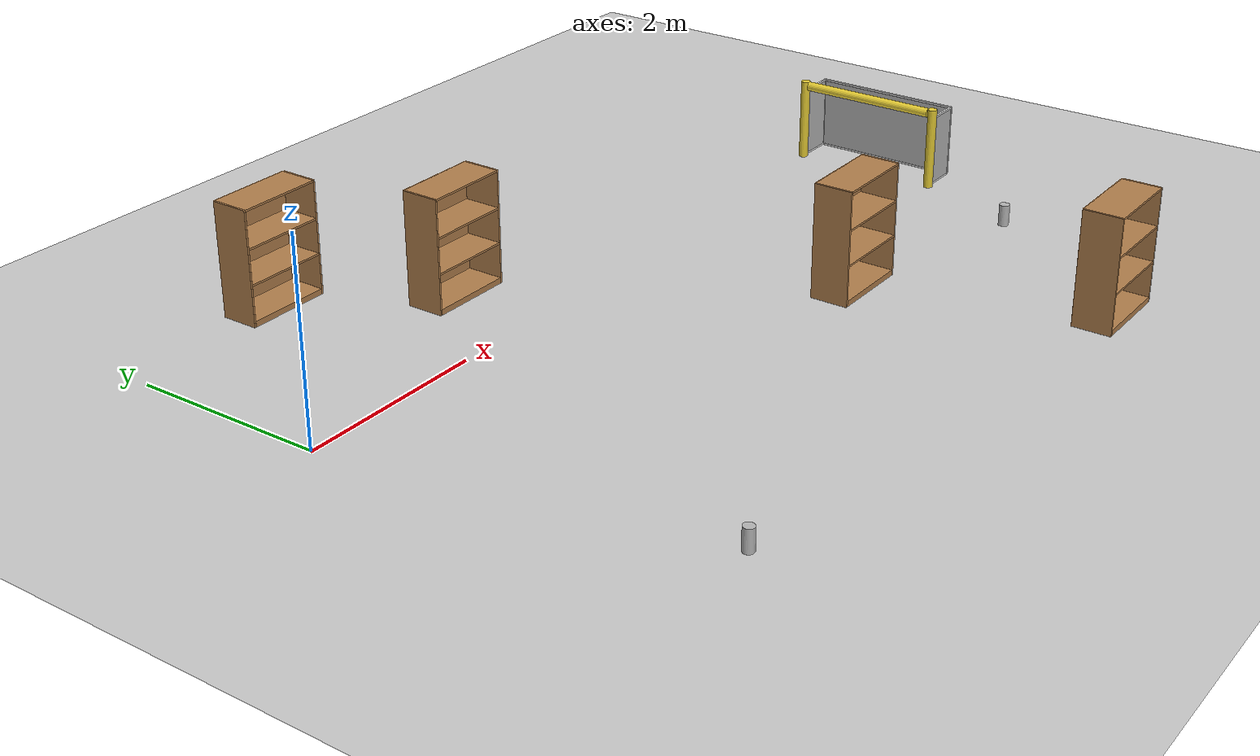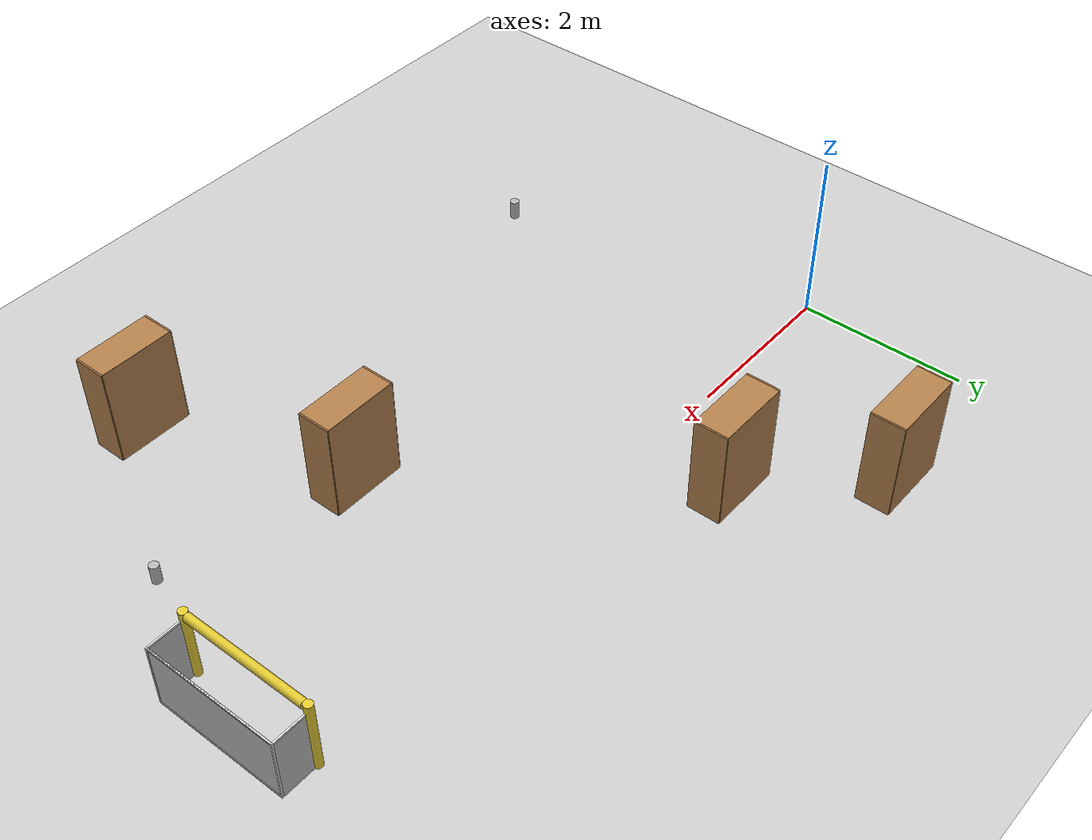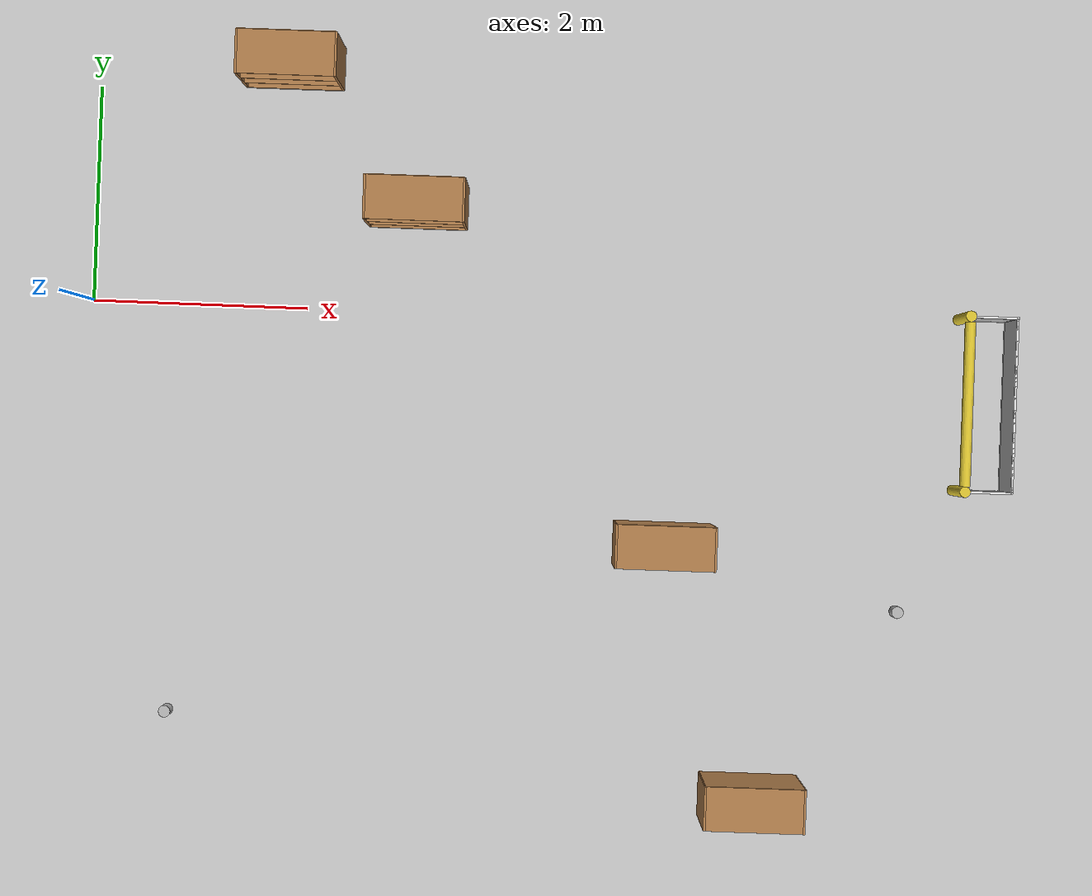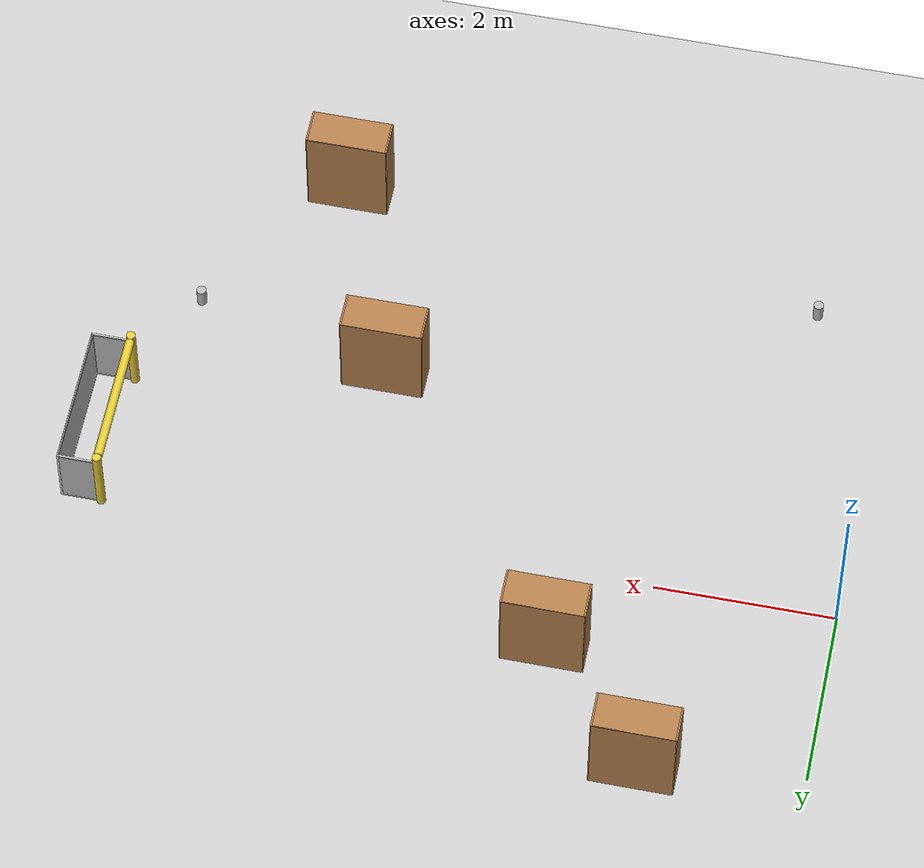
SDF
<sdf version="1.7">
 <world name="default">
  <light name="sun" type="directional">
   <pose>0 0 10 0 -0 0</pose>
   <diffuse>0.8 0.8 0.8 1</diffuse>
   <specular>0.2 0.2 0.2 1</specular>
   <attenuation>
    <range>1000</range>
    <constant>0.9</constant>
    <linear>0.01</linear>
    <quadratic>0.001</quadratic>
   </attenuation>
   <direction>-0.5 0.1 -0.9</direction>
   <spot><inner_angle>0</inner_angle><outer_angle>0</outer_angle><falloff>0</falloff></spot>
  </light>
  <model name="ground_plane">
   <static>1</static>
   <link name="link">
    <collision name="collision">
     <geometry><plane><normal>0 0 1</normal><size>100 100</size></plane></geometry>
     <surface>
      <contact><collide_bitmask>65535</collide_bitmask></contact>
      <friction><ode><mu>100</mu><mu2>50</mu2></ode></friction>
     </surface>
    </collision>
    <visual name="visual">
     <cast_shadows>0</cast_shadows>
     <geometry><plane><normal>0 0 1</normal><size>100 100</size></plane></geometry>
     <material>
      <script><uri>file://media/materials/scripts/gazebo.material</uri><name>Gazebo/Grey</name></script>
     </material>
    </visual>
   </link>
  </model>
  <gravity>0 0 -9.8</gravity>
  <magnetic_field>6e-06 2.3e-05 -4.2e-05</magnetic_field>
  <atmosphere type="adiabatic"/>
  <physics type="ode">
   <max_step_size>0.001</max_step_size>
   <real_time_factor>1</real_time_factor>
   <real_time_update_rate>1000</real_time_update_rate>
  </physics>
  <scene><ambient>0.4 0.4 0.4 1</ambient><background>0.7 0.7 0.7 1</background><shadows>1</shadows></scene>
  <audio><device>default</device></audio>
  <spherical_coordinates>
   <surface_model>EARTH_WGS84</surface_model>
   <latitude_deg>0</latitude_deg>
   <longitude_deg>0</longitude_deg>
   <elevation>0</elevation>
   <heading_deg>0</heading_deg>
  </spherical_coordinates>
  <model name="bookshelf">
   <static>1</static>
   <link name="link">
    <inertial><mass>1</mass></inertial>
    <collision name="back">
     <pose>0 0.005 0.6 0 -0 0</pose>
     <geometry><box><size>0.9 0.01 1.2</size></box></geometry>
    </collision>
    <visual name="visual1">
     <pose>0 0.005 0.6 0 -0 0</pose>
     <geometry><box><size>0.9 0.01 1.2</size></box></geometry>
     <material>
      <script><uri>file://media/materials/scripts/gazebo.material</uri><name>Gazebo/Wood</name></script>
     </material>
    </visual>
    <collision name="left_side">
     <pose>0.45 -0.195 0.6 0 -0 0</pose>
     <geometry><box><size>0.02 0.4 1.2</size></box></geometry>
    </collision>
    <visual name="visual2">
     <pose>0.45 -0.195 0.6 0 -0 0</pose>
     <geometry><box><size>0.02 0.4 1.2</size></box></geometry>
     <material>
      <script><uri>file://media/materials/scripts/gazebo.material</uri><name>Gazebo/Wood</name></script>
     </material>
    </visual>
    <collision name="right_side">
     <pose>-0.45 -0.195 0.6 0 -0 0</pose>
     <geometry><box><size>0.02 0.4 1.2</size></box></geometry>
    </collision>
    <visual name="visual3">
     <pose>-0.45 -0.195 0.6 0 -0 0</pose>
     <geometry><box><size>0.02 0.4 1.2</size></box></geometry>
     <material>
      <script><uri>file://media/materials/scripts/gazebo.material</uri><name>Gazebo/Wood</name></script>
     </material>
    </visual>
    <collision name="bottom">
     <pose>0 -0.195 0.03 0 -0 0</pose>
     <geometry><box><size>0.88 0.4 0.06</size></box></geometry>
    </collision>
    <visual name="visual4">
     <pose>0 -0.195 0.03 0 -0 0</pose>
     <geometry><box><size>0.88 0.4 0.06</size></box></geometry>
     <material>
      <script><uri>file://media/materials/scripts/gazebo.material</uri><name>Gazebo/Wood</name></script>
     </material>
    </visual>
    <collision name="top">
     <pose>0 -0.195 1.19 0 -0 0</pose>
     <geometry><box><size>0.88 0.4 0.02</size></box></geometry>
    </collision>
    <visual name="visual5">
     <pose>0 -0.195 1.19 0 -0 0</pose>
     <geometry><box><size>0.88 0.4 0.02</size></box></geometry>
     <material>
      <script><uri>file://media/materials/scripts/gazebo.material</uri><name>Gazebo/Wood</name></script>
     </material>
    </visual>
    <collision name="low_shelf">
     <pose>0 -0.195 0.43 0 -0 0</pose>
     <geometry><box><size>0.88 0.4 0.02</size></box></geometry>
    </collision>
    <visual name="visual6">
     <pose>0 -0.195 0.43 0 -0 0</pose>
     <geometry><box><size>0.88 0.4 0.02</size></box></geometry>
     <material>
      <script><uri>file://media/materials/scripts/gazebo.material</uri><name>Gazebo/Wood</name></script>
     </material>
    </visual>
    <collision name="high_shelf">
     <pose>0 -0.195 0.8 0 -0 0</pose>
     <geometry><box><size>0.88 0.4 0.02</size></box></geometry>
    </collision>
    <visual name="visual7">
     <pose>0 -0.195 0.8 0 -0 0</pose>
     <geometry><box><size>0.88 0.4 0.02</size></box></geometry>
     <material>
      <script><uri>file://media/materials/scripts/gazebo.material</uri><name>Gazebo/Wood</name></script>
     </material>
    </visual>
   </link>
   <pose>1.81448 2.44251 0 0 -0 0</pose>
  </model>
  <model name="bookshelf_0">
   <static>1</static>
   <link name="link">
    <inertial><mass>1</mass></inertial>
    <collision name="back">
     <pose>0 0.005 0.6 0 -0 0</pose>
     <geometry><box><size>0.9 0.01 1.2</size></box></geometry>
    </collision>
    <visual name="visual1">
     <pose>0 0.005 0.6 0 -0 0</pose>
     <geometry><box><size>0.9 0.01 1.2</size></box></geometry>
     <material>
      <script><uri>file://media/materials/scripts/gazebo.material</uri><name>Gazebo/Wood</name></script>
     </material>
    </visual>
    <collision name="left_side">
     <pose>0.45 -0.195 0.6 0 -0 0</pose>
     <geometry><box><size>0.02 0.4 1.2</size></box></geometry>
    </collision>
    <visual name="visual2">
     <pose>0.45 -0.195 0.6 0 -0 0</pose>
     <geometry><box><size>0.02 0.4 1.2</size></box></geometry>
     <material>
      <script><uri>file://media/materials/scripts/gazebo.material</uri><name>Gazebo/Wood</name></script>
     </material>
    </visual>
    <collision name="right_side">
     <pose>-0.45 -0.195 0.6 0 -0 0</pose>
     <geometry><box><size>0.02 0.4 1.2</size></box></geometry>
    </collision>
    <visual name="visual3">
     <pose>-0.45 -0.195 0.6 0 -0 0</pose>
     <geometry><box><size>0.02 0.4 1.2</size></box></geometry>
     <material>
      <script><uri>file://media/materials/scripts/gazebo.material</uri><name>Gazebo/Wood</name></script>
     </material>
    </visual>
    <collision name="bottom">
     <pose>0 -0.195 0.03 0 -0 0</pose>
     <geometry><box><size>0.88 0.4 0.06</size></box></geometry>
    </collision>
    <visual name="visual4">
     <pose>0 -0.195 0.03 0 -0 0</pose>
     <geometry><box><size>0.88 0.4 0.06</size></box></geometry>
     <material>
      <script><uri>file://media/materials/scripts/gazebo.material</uri><name>Gazebo/Wood</name></script>
     </material>
    </visual>
    <collision name="top">
     <pose>0 -0.195 1.19 0 -0 0</pose>
     <geometry><box><size>0.88 0.4 0.02</size></box></geometry>
    </collision>
    <visual name="visual5">
     <pose>0 -0.195 1.19 0 -0 0</pose>
     <geometry><box><size>0.88 0.4 0.02</size></box></geometry>
     <material>
      <script><uri>file://media/materials/scripts/gazebo.material</uri><name>Gazebo/Wood</name></script>
     </material>
    </visual>
    <collision name="low_shelf">
     <pose>0 -0.195 0.43 0 -0 0</pose>
     <geometry><box><size>0.88 0.4 0.02</size></box></geometry>
    </collision>
    <visual name="visual6">
     <pose>0 -0.195 0.43 0 -0 0</pose>
     <geometry><box><size>0.88 0.4 0.02</size></box></geometry>
     <material>
      <script><uri>file://media/materials/scripts/gazebo.material</uri><name>Gazebo/Wood</name></script>
     </material>
    </visual>
    <collision name="high_shelf">
     <pose>0 -0.195 0.8 0 -0 0</pose>
     <geometry><box><size>0.88 0.4 0.02</size></box></geometry>
    </collision>
    <visual name="visual7">
     <pose>0 -0.195 0.8 0 -0 0</pose>
     <geometry><box><size>0.88 0.4 0.02</size></box></geometry>
     <material>
      <script><uri>file://media/materials/scripts/gazebo.material</uri><name>Gazebo/Wood</name></script>
     </material>
    </visual>
   </link>
   <pose>5.39808 -1.89231 0 0 -0 0</pose>
  </model>
  <model name="bookshelf_1">
   <static>1</static>
   <link name="link">
    <inertial><mass>1</mass></inertial>
    <collision name="back">
     <pose>0 0.005 0.6 0 -0 0</pose>
     <geometry><box><size>0.9 0.01 1.2</size></box></geometry>
    </collision>
    <visual name="visual1">
     <pose>0 0.005 0.6 0 -0 0</pose>
     <geometry><box><size>0.9 0.01 1.2</size></box></geometry>
     <material>
      <script><uri>file://media/materials/scripts/gazebo.material</uri><name>Gazebo/Wood</name></script>
     </material>
    </visual>
    <collision name="left_side">
     <pose>0.45 -0.195 0.6 0 -0 0</pose>
     <geometry><box><size>0.02 0.4 1.2</size></box></geometry>
    </collision>
    <visual name="visual2">
     <pose>0.45 -0.195 0.6 0 -0 0</pose>
     <geometry><box><size>0.02 0.4 1.2</size></box></geometry>
     <material>
      <script><uri>file://media/materials/scripts/gazebo.material</uri><name>Gazebo/Wood</name></script>
     </material>
    </visual>
    <collision name="right_side">
     <pose>-0.45 -0.195 0.6 0 -0 0</pose>
     <geometry><box><size>0.02 0.4 1.2</size></box></geometry>
    </collision>
    <visual name="visual3">
     <pose>-0.45 -0.195 0.6 0 -0 0</pose>
     <geometry><box><size>0.02 0.4 1.2</size></box></geometry>
     <material>
      <script><uri>file://media/materials/scripts/gazebo.material</uri><name>Gazebo/Wood</name></script>
     </material>
    </visual>
    <collision name="bottom">
     <pose>0 -0.195 0.03 0 -0 0</pose>
     <geometry><box><size>0.88 0.4 0.06</size></box></geometry>
    </collision>
    <visual name="visual4">
     <pose>0 -0.195 0.03 0 -0 0</pose>
     <geometry><box><size>0.88 0.4 0.06</size></box></geometry>
     <material>
      <script><uri>file://media/materials/scripts/gazebo.material</uri><name>Gazebo/Wood</name></script>
     </material>
    </visual>
    <collision name="top">
     <pose>0 -0.195 1.19 0 -0 0</pose>
     <geometry><box><size>0.88 0.4 0.02</size></box></geometry>
    </collision>
    <visual name="visual5">
     <pose>0 -0.195 1.19 0 -0 0</pose>
     <geometry><box><size>0.88 0.4 0.02</size></box></geometry>
     <material>
      <script><uri>file://media/materials/scripts/gazebo.material</uri><name>Gazebo/Wood</name></script>
     </material>
    </visual>
    <collision name="low_shelf">
     <pose>0 -0.195 0.43 0 -0 0</pose>
     <geometry><box><size>0.88 0.4 0.02</size></box></geometry>
    </collision>
    <visual name="visual6">
     <pose>0 -0.195 0.43 0 -0 0</pose>
     <geometry><box><size>0.88 0.4 0.02</size></box></geometry>
     <material>
      <script><uri>file://media/materials/scripts/gazebo.material</uri><name>Gazebo/Wood</name></script>
     </material>
    </visual>
    <collision name="high_shelf">
     <pose>0 -0.195 0.8 0 -0 0</pose>
     <geometry><box><size>0.88 0.4 0.02</size></box></geometry>
    </collision>
    <visual name="visual7">
     <pose>0 -0.195 0.8 0 -0 0</pose>
     <geometry><box><size>0.88 0.4 0.02</size></box></geometry>
     <material>
      <script><uri>file://media/materials/scripts/gazebo.material</uri><name>Gazebo/Wood</name></script>
     </material>
    </visual>
   </link>
   <pose>3.01571 1.17546 0 0 -0 0</pose>
  </model>
  <model name="beer">
   <link name="link">
    <pose>0 0 0.115 0 -0 0</pose>
    <inertial>
     <mass>0.39</mass>
     <inertia><ixx>0.00058</ixx><ixy>0</ixy><ixz>0</ixz><iyy>0.00058</iyy><iyz>0</iyz><izz>0.00019</izz></inertia>
    </inertial>
    <collision name="collision">
     <geometry><cylinder><radius>0.055</radius><length>0.23</length></cylinder></geometry>
    </collision>
    <visual name="visual">
     <geometry><cylinder><radius>0.055</radius><length>0.23</length></cylinder></geometry>
     <material>
      <script>
       <uri>model://beer/materials/scripts</uri>
       <uri>model://beer/materials/textures</uri>
       <name>Beer/Diffuse</name>
      </script>
     </material>
    </visual>
   </link>
   <pose>0.817061 -3.80803 0.009992 -0 -0 -8e-06</pose>
  </model>
  <model name="bookshelf_2">
   <static>1</static>
   <link name="link">
    <inertial><mass>1</mass></inertial>
    <collision name="back">
     <pose>0 0.005 0.6 0 -0 0</pose>
     <geometry><box><size>0.9 0.01 1.2</size></box></geometry>
    </collision>
    <visual name="visual1">
     <pose>0 0.005 0.6 0 -0 0</pose>
     <geometry><box><size>0.9 0.01 1.2</size></box></geometry>
     <material>
      <script><uri>file://media/materials/scripts/gazebo.material</uri><name>Gazebo/Wood</name></script>
     </material>
    </visual>
    <collision name="left_side">
     <pose>0.45 -0.195 0.6 0 -0 0</pose>
     <geometry><box><size>0.02 0.4 1.2</size></box></geometry>
    </collision>
    <visual name="visual2">
     <pose>0.45 -0.195 0.6 0 -0 0</pose>
     <geometry><box><size>0.02 0.4 1.2</size></box></geometry>
     <material>
      <script><uri>file://media/materials/scripts/gazebo.material</uri><name>Gazebo/Wood</name></script>
     </material>
    </visual>
    <collision name="right_side">
     <pose>-0.45 -0.195 0.6 0 -0 0</pose>
     <geometry><box><size>0.02 0.4 1.2</size></box></geometry>
    </collision>
    <visual name="visual3">
     <pose>-0.45 -0.195 0.6 0 -0 0</pose>
     <geometry><box><size>0.02 0.4 1.2</size></box></geometry>
     <material>
      <script><uri>file://media/materials/scripts/gazebo.material</uri><name>Gazebo/Wood</name></script>
     </material>
    </visual>
    <collision name="bottom">
     <pose>0 -0.195 0.03 0 -0 0</pose>
     <geometry><box><size>0.88 0.4 0.06</size></box></geometry>
    </collision>
    <visual name="visual4">
     <pose>0 -0.195 0.03 0 -0 0</pose>
     <geometry><box><size>0.88 0.4 0.06</size></box></geometry>
     <material>
      <script><uri>file://media/materials/scripts/gazebo.material</uri><name>Gazebo/Wood</name></script>
     </material>
    </visual>
    <collision name="top">
     <pose>0 -0.195 1.19 0 -0 0</pose>
     <geometry><box><size>0.88 0.4 0.02</size></box></geometry>
    </collision>
    <visual name="visual5">
     <pose>0 -0.195 1.19 0 -0 0</pose>
     <geometry><box><size>0.88 0.4 0.02</size></box></geometry>
     <material>
      <script><uri>file://media/materials/scripts/gazebo.material</uri><name>Gazebo/Wood</name></script>
     </material>
    </visual>
    <collision name="low_shelf">
     <pose>0 -0.195 0.43 0 -0 0</pose>
     <geometry><box><size>0.88 0.4 0.02</size></box></geometry>
    </collision>
    <visual name="visual6">
     <pose>0 -0.195 0.43 0 -0 0</pose>
     <geometry><box><size>0.88 0.4 0.02</size></box></geometry>
     <material>
      <script><uri>file://media/materials/scripts/gazebo.material</uri><name>Gazebo/Wood</name></script>
     </material>
    </visual>
    <collision name="high_shelf">
     <pose>0 -0.195 0.8 0 -0 0</pose>
     <geometry><box><size>0.88 0.4 0.02</size></box></geometry>
    </collision>
    <visual name="visual7">
     <pose>0 -0.195 0.8 0 -0 0</pose>
     <geometry><box><size>0.88 0.4 0.02</size></box></geometry>
     <material>
      <script><uri>file://media/materials/scripts/gazebo.material</uri><name>Gazebo/Wood</name></script>
     </material>
    </visual>
   </link>
   <pose>6.28013 -4.22079 0 0 -0 0</pose>
  </model>
  <model name="beer_0">
   <link name="link">
    <pose>0 0 0.115 0 -0 0</pose>
    <inertial>
     <mass>0.39</mass>
     <inertia><ixx>0.00058</ixx><ixy>0</ixy><ixz>0</ixz><iyy>0.00058</iyy><iyz>0</iyz><izz>0.00019</izz></inertia>
    </inertial>
    <collision name="collision">
     <geometry><cylinder><radius>0.055</radius><length>0.23</length></cylinder></geometry>
    </collision>
    <visual name="visual">
     <geometry><cylinder><radius>0.055</radius><length>0.23</length></cylinder></geometry>
     <material>
      <script>
       <uri>model://beer/materials/scripts</uri>
       <uri>model://beer/materials/textures</uri>
       <name>Beer/Diffuse</name>
      </script>
     </material>
    </visual>
   </link>
   <pose>7.6099 -2.64379 0.009993 -1e-06 -0 -2e-06</pose>
  </model>
  <model name="RoboCup 2014 SPL Goal">
   <static>1</static>
   <link name="left_post">
    <pose>0 0.8 0.45 0 -0 0</pose>
    <collision name="collision">
     <geometry><cylinder><radius>0.05</radius><length>0.9</length></cylinder></geometry>
    </collision>
    <visual name="visual">
     <geometry><cylinder><radius>0.05</radius><length>0.9</length></cylinder></geometry>
     <material>
      <script><uri>file://media/materials/scripts/gazebo.material</uri><name>Gazebo/ZincYellow</name></script>
     </material>
    </visual>
   </link>
   <link name="left_support_horiz_lower">
    <pose>0.24 0.8 0.01 0 -0 0</pose>
    <collision name="collision"><geometry><box><size>0.38 0.02 0.02</size></box></geometry></collision>
    <visual name="visual">
     <geometry><box><size>0.38 0.02 0.02</size></box></geometry>
     <material>
      <script><uri>file://media/materials/scripts/gazebo.material</uri><name>Gazebo/White</name></script>
     </material>
    </visual>
   </link>
   <link name="left_support_horiz_upper">
    <pose>0.24 0.8 0.79 0 -0 0</pose>
    <collision name="collision"><geometry><box><size>0.38 0.02 0.02</size></box></geometry></collision>
    <visual name="visual">
     <geometry><box><size>0.38 0.02 0.02</size></box></geometry>
     <material>
      <script><uri>file://media/materials/scripts/gazebo.material</uri><name>Gazebo/White</name></script>
     </material>
    </visual>
   </link>
   <link name="left_support_vertical">
    <pose>0.44 0.8 0.4 3.14159 1.57079 3.14159</pose>
    <collision name="collision"><geometry><box><size>0.8 0.02 0.02</size></box></geometry></collision>
    <visual name="visual">
     <geometry><box><size>0.8 0.02 0.02</size></box></geometry>
     <material>
      <script><uri>file://media/materials/scripts/gazebo.material</uri><name>Gazebo/White</name></script>
     </material>
    </visual>
   </link>
   <link name="right_support_horiz_lower">
    <pose>0.24 -0.8 0.01 0 -0 0</pose>
    <collision name="collision"><geometry><box><size>0.38 0.02 0.02</size></box></geometry></collision>
    <visual name="visual">
     <geometry><box><size>0.38 0.02 0.02</size></box></geometry>
     <material>
      <script><uri>file://media/materials/scripts/gazebo.material</uri><name>Gazebo/White</name></script>
     </material>
    </visual>
   </link>
   <link name="right_support_horiz_upper">
    <pose>0.24 -0.8 0.79 0 -0 0</pose>
    <collision name="collision"><geometry><box><size>0.38 0.02 0.02</size></box></geometry></collision>
    <visual name="visual">
     <geometry><box><size>0.38 0.02 0.02</size></box></geometry>
     <material>
      <script><uri>file://media/materials/scripts/gazebo.material</uri><name>Gazebo/White</name></script>
     </material>
    </visual>
   </link>
   <link name="right_support_vertical">
    <pose>0.44 -0.8 0.4 3.14159 1.57079 3.14159</pose>
    <collision name="collision"><geometry><box><size>0.8 0.02 0.02</size></box></geometry></collision>
    <visual name="visual">
     <geometry><box><size>0.8 0.02 0.02</size></box></geometry>
     <material>
      <script><uri>file://media/materials/scripts/gazebo.material</uri><name>Gazebo/White</name></script>
     </material>
    </visual>
   </link>
   <link name="center_support_horiz_lower">
    <pose>0.44 0 0.01 3.14159 1.57079 3.14159</pose>
    <collision name="collision"><geometry><box><size>0.02 1.58 0.02</size></box></geometry></collision>
    <visual name="visual">
     <geometry><box><size>0.02 1.58 0.02</size></box></geometry>
     <material>
      <script><uri>file://media/materials/scripts/gazebo.material</uri><name>Gazebo/White</name></script>
     </material>
    </visual>
   </link>
   <link name="center_support_horiz_upper">
    <pose>0.44 0 0.79 3.14159 1.57079 3.14159</pose>
    <collision name="collision"><geometry><box><size>0.02 1.58 0.02</size></box></geometry></collision>
    <visual name="visual">
     <geometry><box><size>0.02 1.58 0.02</size></box></geometry>
     <material>
      <script><uri>file://media/materials/scripts/gazebo.material</uri><name>Gazebo/White</name></script>
     </material>
    </visual>
   </link>
   <link name="right_post">
    <pose>0 -0.8 0.45 0 -0 0</pose>
    <collision name="collision">
     <geometry><cylinder><radius>0.05</radius><length>0.9</length></cylinder></geometry>
    </collision>
    <visual name="visual">
     <geometry><cylinder><radius>0.05</radius><length>0.9</length></cylinder></geometry>
     <material>
      <script><uri>file://media/materials/scripts/gazebo.material</uri><name>Gazebo/ZincYellow</name></script>
     </material>
    </visual>
   </link>
   <link name="crossbar">
    <pose>0 0 0.85 1.57 1.57 0</pose>
    <collision name="collision">
     <geometry><cylinder><radius>0.05</radius><length>1.5</length></cylinder></geometry>
    </collision>
    <visual name="visual">
     <geometry><cylinder><radius>0.05</radius><length>1.5</length></cylinder></geometry>
     <material>
      <script><uri>file://media/materials/scripts/gazebo.material</uri><name>Gazebo/ZincYellow</name></script>
     </material>
    </visual>
   </link>
   <link name="center_net">
    <pose>0.44 0 0.4 0 -0 0</pose>
    <collision name="collision"><geometry><box><size>0.01 1.6 0.8</size></box></geometry></collision>
    <visual name="visual">
     <geometry><box><size>0.01 1.6 0.8</size></box></geometry>
     <material>
      <script>
       <uri>model://robocup09_spl_field/materials/scripts/</uri>
       <uri>model://robocup09_spl_field/materials/textures/</uri>
       <name>RoboCup/Net</name>
      </script>
     </material>
    </visual>
   </link>
   <link name="left_net">
    <pose>0.24 0.8 0.4 0 -0 0</pose>
    <collision name="collision"><geometry><box><size>0.38 0.01 0.76</size></box></geometry></collision>
    <visual name="visual">
     <geometry><box><size>0.38 0.01 0.76</size></box></geometry>
     <material>
      <script>
       <uri>model://robocup09_spl_field/materials/scripts/</uri>
       <uri>model://robocup09_spl_field/materials/textures/</uri>
       <name>RoboCup/Net</name>
      </script>
     </material>
    </visual>
   </link>
   <link name="right_net">
    <pose>0.24 -0.8 0.4 0 -0 0</pose>
    <collision name="collision"><geometry><box><size>0.38 0.01 0.76</size></box></geometry></collision>
    <visual name="visual">
     <geometry><box><size>0.38 0.01 0.76</size></box></geometry>
     <material>
      <script>
       <uri>model://robocup09_spl_field/materials/scripts/</uri>
       <uri>model://robocup09_spl_field/materials/textures/</uri>
       <name>RoboCup/Net</name>
      </script>
     </material>
    </visual>
   </link>
   <pose>8.10882 -0.689123 0 0 -0 0</pose>
  </model>
 </world>
</sdf>
